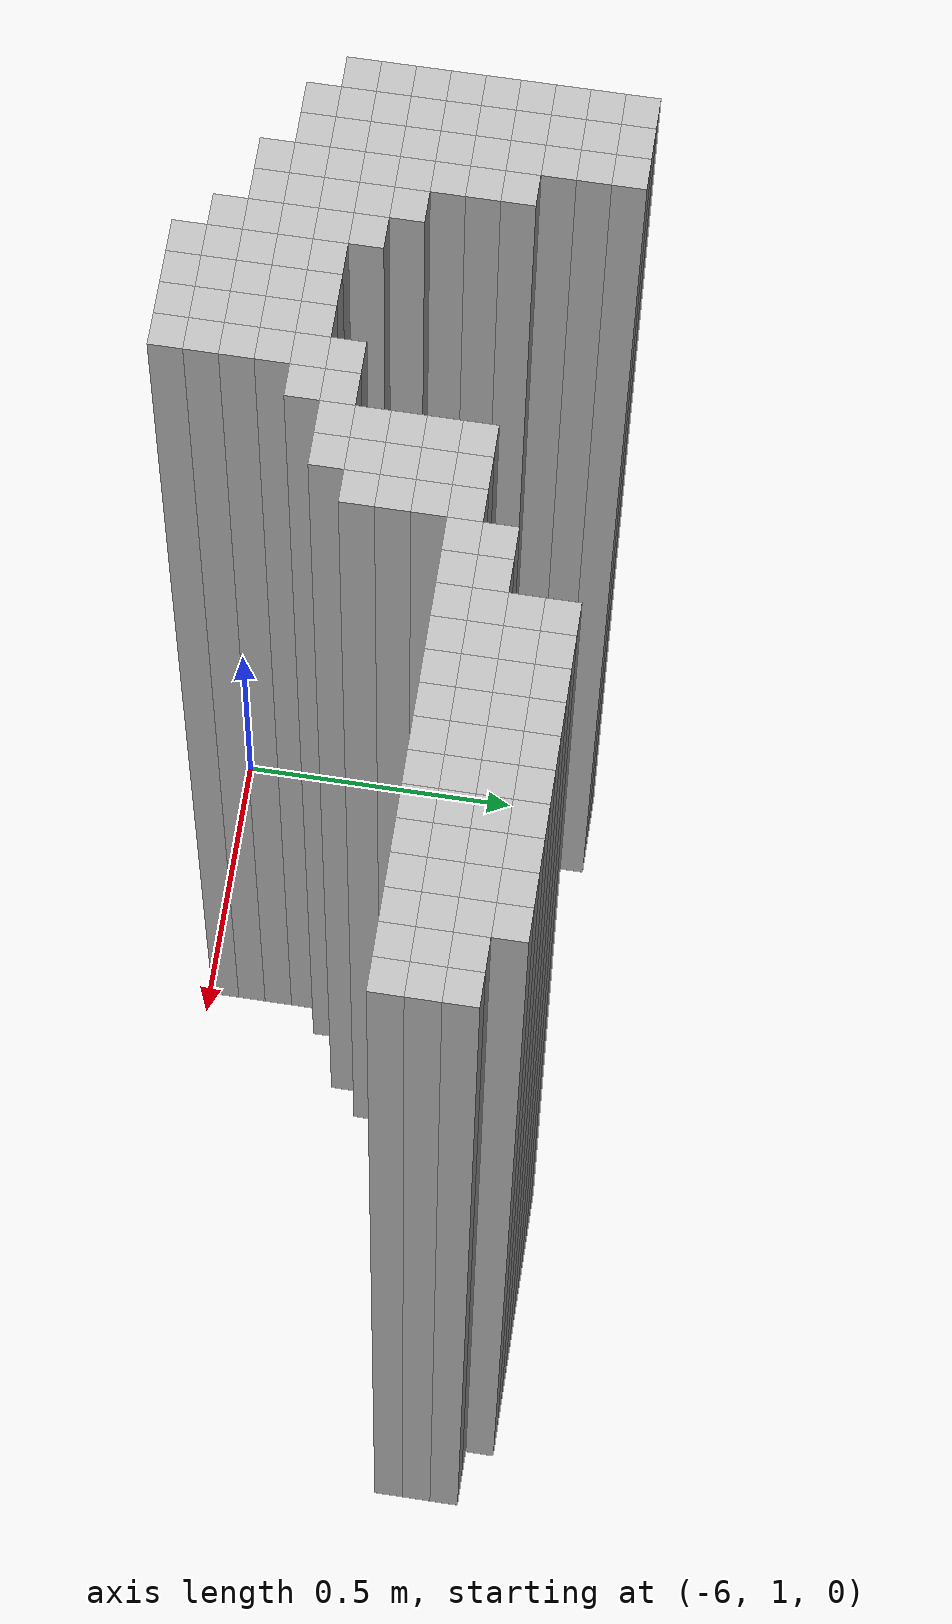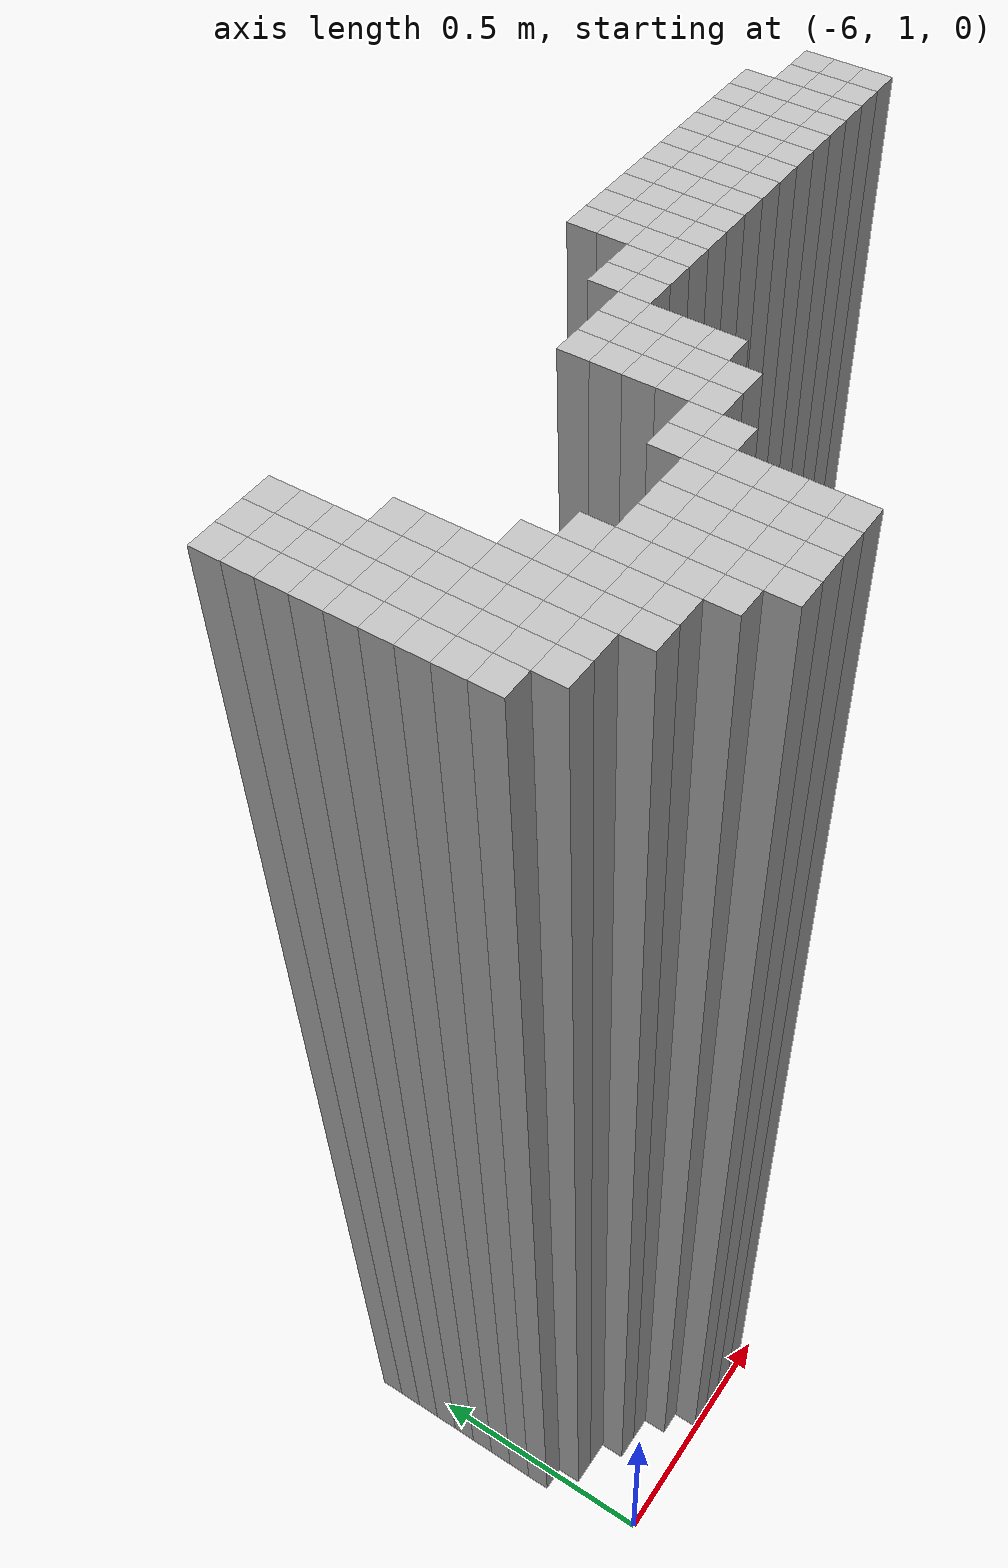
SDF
<sdf version="1.9">
 <world name="map_world">
  <model name="wall_103_121">
   <static>true</static>
   <pose>-6.011 1.630 1.250 0 0 0</pose>
   <link name="link">
    <collision name="collision"><geometry><box><size>0.050 0.050 2.500</size></box></geometry></collision>
    <visual name="visual"><geometry><box><size>0.050 0.050 2.500</size></box></geometry></visual>
   </link>
  </model>
  <model name="wall_104_121">
   <static>true</static>
   <pose>-5.961 1.630 1.250 0 0 0</pose>
   <link name="link">
    <collision name="collision"><geometry><box><size>0.050 0.050 2.500</size></box></geometry></collision>
    <visual name="visual"><geometry><box><size>0.050 0.050 2.500</size></box></geometry></visual>
   </link>
  </model>
  <model name="wall_105_121">
   <static>true</static>
   <pose>-5.911 1.630 1.250 0 0 0</pose>
   <link name="link">
    <collision name="collision"><geometry><box><size>0.050 0.050 2.500</size></box></geometry></collision>
    <visual name="visual"><geometry><box><size>0.050 0.050 2.500</size></box></geometry></visual>
   </link>
  </model>
  <model name="wall_119_121">
   <static>true</static>
   <pose>-5.211 1.630 1.250 0 0 0</pose>
   <link name="link">
    <collision name="collision"><geometry><box><size>0.050 0.050 2.500</size></box></geometry></collision>
    <visual name="visual"><geometry><box><size>0.050 0.050 2.500</size></box></geometry></visual>
   </link>
  </model>
  <model name="wall_120_121">
   <static>true</static>
   <pose>-5.161 1.630 1.250 0 0 0</pose>
   <link name="link">
    <collision name="collision"><geometry><box><size>0.050 0.050 2.500</size></box></geometry></collision>
    <visual name="visual"><geometry><box><size>0.050 0.050 2.500</size></box></geometry></visual>
   </link>
  </model>
  <model name="wall_121_121">
   <static>true</static>
   <pose>-5.111 1.630 1.250 0 0 0</pose>
   <link name="link">
    <collision name="collision"><geometry><box><size>0.050 0.050 2.500</size></box></geometry></collision>
    <visual name="visual"><geometry><box><size>0.050 0.050 2.500</size></box></geometry></visual>
   </link>
  </model>
  <model name="wall_122_121">
   <static>true</static>
   <pose>-5.061 1.630 1.250 0 0 0</pose>
   <link name="link">
    <collision name="collision"><geometry><box><size>0.050 0.050 2.500</size></box></geometry></collision>
    <visual name="visual"><geometry><box><size>0.050 0.050 2.500</size></box></geometry></visual>
   </link>
  </model>
  <model name="wall_123_121">
   <static>true</static>
   <pose>-5.011 1.630 1.250 0 0 0</pose>
   <link name="link">
    <collision name="collision"><geometry><box><size>0.050 0.050 2.500</size></box></geometry></collision>
    <visual name="visual"><geometry><box><size>0.050 0.050 2.500</size></box></geometry></visual>
   </link>
  </model>
  <model name="wall_124_121">
   <static>true</static>
   <pose>-4.961 1.630 1.250 0 0 0</pose>
   <link name="link">
    <collision name="collision"><geometry><box><size>0.050 0.050 2.500</size></box></geometry></collision>
    <visual name="visual"><geometry><box><size>0.050 0.050 2.500</size></box></geometry></visual>
   </link>
  </model>
  <model name="wall_125_121">
   <static>true</static>
   <pose>-4.911 1.630 1.250 0 0 0</pose>
   <link name="link">
    <collision name="collision"><geometry><box><size>0.050 0.050 2.500</size></box></geometry></collision>
    <visual name="visual"><geometry><box><size>0.050 0.050 2.500</size></box></geometry></visual>
   </link>
  </model>
  <model name="wall_126_121">
   <static>true</static>
   <pose>-4.861 1.630 1.250 0 0 0</pose>
   <link name="link">
    <collision name="collision"><geometry><box><size>0.050 0.050 2.500</size></box></geometry></collision>
    <visual name="visual"><geometry><box><size>0.050 0.050 2.500</size></box></geometry></visual>
   </link>
  </model>
  <model name="wall_127_121">
   <static>true</static>
   <pose>-4.811 1.630 1.250 0 0 0</pose>
   <link name="link">
    <collision name="collision"><geometry><box><size>0.050 0.050 2.500</size></box></geometry></collision>
    <visual name="visual"><geometry><box><size>0.050 0.050 2.500</size></box></geometry></visual>
   </link>
  </model>
  <model name="wall_128_121">
   <static>true</static>
   <pose>-4.761 1.630 1.250 0 0 0</pose>
   <link name="link">
    <collision name="collision"><geometry><box><size>0.050 0.050 2.500</size></box></geometry></collision>
    <visual name="visual"><geometry><box><size>0.050 0.050 2.500</size></box></geometry></visual>
   </link>
  </model>
  <model name="wall_103_122">
   <static>true</static>
   <pose>-6.011 1.580 1.250 0 0 0</pose>
   <link name="link">
    <collision name="collision"><geometry><box><size>0.050 0.050 2.500</size></box></geometry></collision>
    <visual name="visual"><geometry><box><size>0.050 0.050 2.500</size></box></geometry></visual>
   </link>
  </model>
  <model name="wall_104_122">
   <static>true</static>
   <pose>-5.961 1.580 1.250 0 0 0</pose>
   <link name="link">
    <collision name="collision"><geometry><box><size>0.050 0.050 2.500</size></box></geometry></collision>
    <visual name="visual"><geometry><box><size>0.050 0.050 2.500</size></box></geometry></visual>
   </link>
  </model>
  <model name="wall_105_122">
   <static>true</static>
   <pose>-5.911 1.580 1.250 0 0 0</pose>
   <link name="link">
    <collision name="collision"><geometry><box><size>0.050 0.050 2.500</size></box></geometry></collision>
    <visual name="visual"><geometry><box><size>0.050 0.050 2.500</size></box></geometry></visual>
   </link>
  </model>
  <model name="wall_119_122">
   <static>true</static>
   <pose>-5.211 1.580 1.250 0 0 0</pose>
   <link name="link">
    <collision name="collision"><geometry><box><size>0.050 0.050 2.500</size></box></geometry></collision>
    <visual name="visual"><geometry><box><size>0.050 0.050 2.500</size></box></geometry></visual>
   </link>
  </model>
  <model name="wall_120_122">
   <static>true</static>
   <pose>-5.161 1.580 1.250 0 0 0</pose>
   <link name="link">
    <collision name="collision"><geometry><box><size>0.050 0.050 2.500</size></box></geometry></collision>
    <visual name="visual"><geometry><box><size>0.050 0.050 2.500</size></box></geometry></visual>
   </link>
  </model>
  <model name="wall_121_122">
   <static>true</static>
   <pose>-5.111 1.580 1.250 0 0 0</pose>
   <link name="link">
    <collision name="collision"><geometry><box><size>0.050 0.050 2.500</size></box></geometry></collision>
    <visual name="visual"><geometry><box><size>0.050 0.050 2.500</size></box></geometry></visual>
   </link>
  </model>
  <model name="wall_122_122">
   <static>true</static>
   <pose>-5.061 1.580 1.250 0 0 0</pose>
   <link name="link">
    <collision name="collision"><geometry><box><size>0.050 0.050 2.500</size></box></geometry></collision>
    <visual name="visual"><geometry><box><size>0.050 0.050 2.500</size></box></geometry></visual>
   </link>
  </model>
  <model name="wall_123_122">
   <static>true</static>
   <pose>-5.011 1.580 1.250 0 0 0</pose>
   <link name="link">
    <collision name="collision"><geometry><box><size>0.050 0.050 2.500</size></box></geometry></collision>
    <visual name="visual"><geometry><box><size>0.050 0.050 2.500</size></box></geometry></visual>
   </link>
  </model>
  <model name="wall_124_122">
   <static>true</static>
   <pose>-4.961 1.580 1.250 0 0 0</pose>
   <link name="link">
    <collision name="collision"><geometry><box><size>0.050 0.050 2.500</size></box></geometry></collision>
    <visual name="visual"><geometry><box><size>0.050 0.050 2.500</size></box></geometry></visual>
   </link>
  </model>
  <model name="wall_125_122">
   <static>true</static>
   <pose>-4.911 1.580 1.250 0 0 0</pose>
   <link name="link">
    <collision name="collision"><geometry><box><size>0.050 0.050 2.500</size></box></geometry></collision>
    <visual name="visual"><geometry><box><size>0.050 0.050 2.500</size></box></geometry></visual>
   </link>
  </model>
  <model name="wall_126_122">
   <static>true</static>
   <pose>-4.861 1.580 1.250 0 0 0</pose>
   <link name="link">
    <collision name="collision"><geometry><box><size>0.050 0.050 2.500</size></box></geometry></collision>
    <visual name="visual"><geometry><box><size>0.050 0.050 2.500</size></box></geometry></visual>
   </link>
  </model>
  <model name="wall_127_122">
   <static>true</static>
   <pose>-4.811 1.580 1.250 0 0 0</pose>
   <link name="link">
    <collision name="collision"><geometry><box><size>0.050 0.050 2.500</size></box></geometry></collision>
    <visual name="visual"><geometry><box><size>0.050 0.050 2.500</size></box></geometry></visual>
   </link>
  </model>
  <model name="wall_128_122">
   <static>true</static>
   <pose>-4.761 1.580 1.250 0 0 0</pose>
   <link name="link">
    <collision name="collision"><geometry><box><size>0.050 0.050 2.500</size></box></geometry></collision>
    <visual name="visual"><geometry><box><size>0.050 0.050 2.500</size></box></geometry></visual>
   </link>
  </model>
  <model name="wall_129_122">
   <static>true</static>
   <pose>-4.711 1.580 1.250 0 0 0</pose>
   <link name="link">
    <collision name="collision"><geometry><box><size>0.050 0.050 2.500</size></box></geometry></collision>
    <visual name="visual"><geometry><box><size>0.050 0.050 2.500</size></box></geometry></visual>
   </link>
  </model>
  <model name="wall_130_122">
   <static>true</static>
   <pose>-4.661 1.580 1.250 0 0 0</pose>
   <link name="link">
    <collision name="collision"><geometry><box><size>0.050 0.050 2.500</size></box></geometry></collision>
    <visual name="visual"><geometry><box><size>0.050 0.050 2.500</size></box></geometry></visual>
   </link>
  </model>
  <model name="wall_103_123">
   <static>true</static>
   <pose>-6.011 1.530 1.250 0 0 0</pose>
   <link name="link">
    <collision name="collision"><geometry><box><size>0.050 0.050 2.500</size></box></geometry></collision>
    <visual name="visual"><geometry><box><size>0.050 0.050 2.500</size></box></geometry></visual>
   </link>
  </model>
  <model name="wall_104_123">
   <static>true</static>
   <pose>-5.961 1.530 1.250 0 0 0</pose>
   <link name="link">
    <collision name="collision"><geometry><box><size>0.050 0.050 2.500</size></box></geometry></collision>
    <visual name="visual"><geometry><box><size>0.050 0.050 2.500</size></box></geometry></visual>
   </link>
  </model>
  <model name="wall_105_123">
   <static>true</static>
   <pose>-5.911 1.530 1.250 0 0 0</pose>
   <link name="link">
    <collision name="collision"><geometry><box><size>0.050 0.050 2.500</size></box></geometry></collision>
    <visual name="visual"><geometry><box><size>0.050 0.050 2.500</size></box></geometry></visual>
   </link>
  </model>
  <model name="wall_117_123">
   <static>true</static>
   <pose>-5.311 1.530 1.250 0 0 0</pose>
   <link name="link">
    <collision name="collision"><geometry><box><size>0.050 0.050 2.500</size></box></geometry></collision>
    <visual name="visual"><geometry><box><size>0.050 0.050 2.500</size></box></geometry></visual>
   </link>
  </model>
  <model name="wall_118_123">
   <static>true</static>
   <pose>-5.261 1.530 1.250 0 0 0</pose>
   <link name="link">
    <collision name="collision"><geometry><box><size>0.050 0.050 2.500</size></box></geometry></collision>
    <visual name="visual"><geometry><box><size>0.050 0.050 2.500</size></box></geometry></visual>
   </link>
  </model>
  <model name="wall_119_123">
   <static>true</static>
   <pose>-5.211 1.530 1.250 0 0 0</pose>
   <link name="link">
    <collision name="collision"><geometry><box><size>0.050 0.050 2.500</size></box></geometry></collision>
    <visual name="visual"><geometry><box><size>0.050 0.050 2.500</size></box></geometry></visual>
   </link>
  </model>
  <model name="wall_120_123">
   <static>true</static>
   <pose>-5.161 1.530 1.250 0 0 0</pose>
   <link name="link">
    <collision name="collision"><geometry><box><size>0.050 0.050 2.500</size></box></geometry></collision>
    <visual name="visual"><geometry><box><size>0.050 0.050 2.500</size></box></geometry></visual>
   </link>
  </model>
  <model name="wall_121_123">
   <static>true</static>
   <pose>-5.111 1.530 1.250 0 0 0</pose>
   <link name="link">
    <collision name="collision"><geometry><box><size>0.050 0.050 2.500</size></box></geometry></collision>
    <visual name="visual"><geometry><box><size>0.050 0.050 2.500</size></box></geometry></visual>
   </link>
  </model>
  <model name="wall_122_123">
   <static>true</static>
   <pose>-5.061 1.530 1.250 0 0 0</pose>
   <link name="link">
    <collision name="collision"><geometry><box><size>0.050 0.050 2.500</size></box></geometry></collision>
    <visual name="visual"><geometry><box><size>0.050 0.050 2.500</size></box></geometry></visual>
   </link>
  </model>
  <model name="wall_123_123">
   <static>true</static>
   <pose>-5.011 1.530 1.250 0 0 0</pose>
   <link name="link">
    <collision name="collision"><geometry><box><size>0.050 0.050 2.500</size></box></geometry></collision>
    <visual name="visual"><geometry><box><size>0.050 0.050 2.500</size></box></geometry></visual>
   </link>
  </model>
  <model name="wall_124_123">
   <static>true</static>
   <pose>-4.961 1.530 1.250 0 0 0</pose>
   <link name="link">
    <collision name="collision"><geometry><box><size>0.050 0.050 2.500</size></box></geometry></collision>
    <visual name="visual"><geometry><box><size>0.050 0.050 2.500</size></box></geometry></visual>
   </link>
  </model>
  <model name="wall_125_123">
   <static>true</static>
   <pose>-4.911 1.530 1.250 0 0 0</pose>
   <link name="link">
    <collision name="collision"><geometry><box><size>0.050 0.050 2.500</size></box></geometry></collision>
    <visual name="visual"><geometry><box><size>0.050 0.050 2.500</size></box></geometry></visual>
   </link>
  </model>
  <model name="wall_126_123">
   <static>true</static>
   <pose>-4.861 1.530 1.250 0 0 0</pose>
   <link name="link">
    <collision name="collision"><geometry><box><size>0.050 0.050 2.500</size></box></geometry></collision>
    <visual name="visual"><geometry><box><size>0.050 0.050 2.500</size></box></geometry></visual>
   </link>
  </model>
  <model name="wall_127_123">
   <static>true</static>
   <pose>-4.811 1.530 1.250 0 0 0</pose>
   <link name="link">
    <collision name="collision"><geometry><box><size>0.050 0.050 2.500</size></box></geometry></collision>
    <visual name="visual"><geometry><box><size>0.050 0.050 2.500</size></box></geometry></visual>
   </link>
  </model>
  <model name="wall_128_123">
   <static>true</static>
   <pose>-4.761 1.530 1.250 0 0 0</pose>
   <link name="link">
    <collision name="collision"><geometry><box><size>0.050 0.050 2.500</size></box></geometry></collision>
    <visual name="visual"><geometry><box><size>0.050 0.050 2.500</size></box></geometry></visual>
   </link>
  </model>
  <model name="wall_129_123">
   <static>true</static>
   <pose>-4.711 1.530 1.250 0 0 0</pose>
   <link name="link">
    <collision name="collision"><geometry><box><size>0.050 0.050 2.500</size></box></geometry></collision>
    <visual name="visual"><geometry><box><size>0.050 0.050 2.500</size></box></geometry></visual>
   </link>
  </model>
  <model name="wall_130_123">
   <static>true</static>
   <pose>-4.661 1.530 1.250 0 0 0</pose>
   <link name="link">
    <collision name="collision"><geometry><box><size>0.050 0.050 2.500</size></box></geometry></collision>
    <visual name="visual"><geometry><box><size>0.050 0.050 2.500</size></box></geometry></visual>
   </link>
  </model>
  <model name="wall_103_124">
   <static>true</static>
   <pose>-6.011 1.480 1.250 0 0 0</pose>
   <link name="link">
    <collision name="collision"><geometry><box><size>0.050 0.050 2.500</size></box></geometry></collision>
    <visual name="visual"><geometry><box><size>0.050 0.050 2.500</size></box></geometry></visual>
   </link>
  </model>
  <model name="wall_104_124">
   <static>true</static>
   <pose>-5.961 1.480 1.250 0 0 0</pose>
   <link name="link">
    <collision name="collision"><geometry><box><size>0.050 0.050 2.500</size></box></geometry></collision>
    <visual name="visual"><geometry><box><size>0.050 0.050 2.500</size></box></geometry></visual>
   </link>
  </model>
  <model name="wall_105_124">
   <static>true</static>
   <pose>-5.911 1.480 1.250 0 0 0</pose>
   <link name="link">
    <collision name="collision"><geometry><box><size>0.050 0.050 2.500</size></box></geometry></collision>
    <visual name="visual"><geometry><box><size>0.050 0.050 2.500</size></box></geometry></visual>
   </link>
  </model>
  <model name="wall_106_124">
   <static>true</static>
   <pose>-5.861 1.480 1.250 0 0 0</pose>
   <link name="link">
    <collision name="collision"><geometry><box><size>0.050 0.050 2.500</size></box></geometry></collision>
    <visual name="visual"><geometry><box><size>0.050 0.050 2.500</size></box></geometry></visual>
   </link>
  </model>
  <model name="wall_114_124">
   <static>true</static>
   <pose>-5.461 1.480 1.250 0 0 0</pose>
   <link name="link">
    <collision name="collision"><geometry><box><size>0.050 0.050 2.500</size></box></geometry></collision>
    <visual name="visual"><geometry><box><size>0.050 0.050 2.500</size></box></geometry></visual>
   </link>
  </model>
  <model name="wall_115_124">
   <static>true</static>
   <pose>-5.411 1.480 1.250 0 0 0</pose>
   <link name="link">
    <collision name="collision"><geometry><box><size>0.050 0.050 2.500</size></box></geometry></collision>
    <visual name="visual"><geometry><box><size>0.050 0.050 2.500</size></box></geometry></visual>
   </link>
  </model>
  <model name="wall_116_124">
   <static>true</static>
   <pose>-5.361 1.480 1.250 0 0 0</pose>
   <link name="link">
    <collision name="collision"><geometry><box><size>0.050 0.050 2.500</size></box></geometry></collision>
    <visual name="visual"><geometry><box><size>0.050 0.050 2.500</size></box></geometry></visual>
   </link>
  </model>
  <model name="wall_117_124">
   <static>true</static>
   <pose>-5.311 1.480 1.250 0 0 0</pose>
   <link name="link">
    <collision name="collision"><geometry><box><size>0.050 0.050 2.500</size></box></geometry></collision>
    <visual name="visual"><geometry><box><size>0.050 0.050 2.500</size></box></geometry></visual>
   </link>
  </model>
  <model name="wall_118_124">
   <static>true</static>
   <pose>-5.261 1.480 1.250 0 0 0</pose>
   <link name="link">
    <collision name="collision"><geometry><box><size>0.050 0.050 2.500</size></box></geometry></collision>
    <visual name="visual"><geometry><box><size>0.050 0.050 2.500</size></box></geometry></visual>
   </link>
  </model>
  <model name="wall_119_124">
   <static>true</static>
   <pose>-5.211 1.480 1.250 0 0 0</pose>
   <link name="link">
    <collision name="collision"><geometry><box><size>0.050 0.050 2.500</size></box></geometry></collision>
    <visual name="visual"><geometry><box><size>0.050 0.050 2.500</size></box></geometry></visual>
   </link>
  </model>
  <model name="wall_120_124">
   <static>true</static>
   <pose>-5.161 1.480 1.250 0 0 0</pose>
   <link name="link">
    <collision name="collision"><geometry><box><size>0.050 0.050 2.500</size></box></geometry></collision>
    <visual name="visual"><geometry><box><size>0.050 0.050 2.500</size></box></geometry></visual>
   </link>
  </model>
  <model name="wall_121_124">
   <static>true</static>
   <pose>-5.111 1.480 1.250 0 0 0</pose>
   <link name="link">
    <collision name="collision"><geometry><box><size>0.050 0.050 2.500</size></box></geometry></collision>
    <visual name="visual"><geometry><box><size>0.050 0.050 2.500</size></box></geometry></visual>
   </link>
  </model>
  <model name="wall_122_124">
   <static>true</static>
   <pose>-5.061 1.480 1.250 0 0 0</pose>
   <link name="link">
    <collision name="collision"><geometry><box><size>0.050 0.050 2.500</size></box></geometry></collision>
    <visual name="visual"><geometry><box><size>0.050 0.050 2.500</size></box></geometry></visual>
   </link>
  </model>
  <model name="wall_123_124">
   <static>true</static>
   <pose>-5.011 1.480 1.250 0 0 0</pose>
   <link name="link">
    <collision name="collision"><geometry><box><size>0.050 0.050 2.500</size></box></geometry></collision>
    <visual name="visual"><geometry><box><size>0.050 0.050 2.500</size></box></geometry></visual>
   </link>
  </model>
  <model name="wall_124_124">
   <static>true</static>
   <pose>-4.961 1.480 1.250 0 0 0</pose>
   <link name="link">
    <collision name="collision"><geometry><box><size>0.050 0.050 2.500</size></box></geometry></collision>
    <visual name="visual"><geometry><box><size>0.050 0.050 2.500</size></box></geometry></visual>
   </link>
  </model>
  <model name="wall_125_124">
   <static>true</static>
   <pose>-4.911 1.480 1.250 0 0 0</pose>
   <link name="link">
    <collision name="collision"><geometry><box><size>0.050 0.050 2.500</size></box></geometry></collision>
    <visual name="visual"><geometry><box><size>0.050 0.050 2.500</size></box></geometry></visual>
   </link>
  </model>
  <model name="wall_126_124">
   <static>true</static>
   <pose>-4.861 1.480 1.250 0 0 0</pose>
   <link name="link">
    <collision name="collision"><geometry><box><size>0.050 0.050 2.500</size></box></geometry></collision>
    <visual name="visual"><geometry><box><size>0.050 0.050 2.500</size></box></geometry></visual>
   </link>
  </model>
  <model name="wall_127_124">
   <static>true</static>
   <pose>-4.811 1.480 1.250 0 0 0</pose>
   <link name="link">
    <collision name="collision"><geometry><box><size>0.050 0.050 2.500</size></box></geometry></collision>
    <visual name="visual"><geometry><box><size>0.050 0.050 2.500</size></box></geometry></visual>
   </link>
  </model>
  <model name="wall_128_124">
   <static>true</static>
   <pose>-4.761 1.480 1.250 0 0 0</pose>
   <link name="link">
    <collision name="collision"><geometry><box><size>0.050 0.050 2.500</size></box></geometry></collision>
    <visual name="visual"><geometry><box><size>0.050 0.050 2.500</size></box></geometry></visual>
   </link>
  </model>
  <model name="wall_129_124">
   <static>true</static>
   <pose>-4.711 1.480 1.250 0 0 0</pose>
   <link name="link">
    <collision name="collision"><geometry><box><size>0.050 0.050 2.500</size></box></geometry></collision>
    <visual name="visual"><geometry><box><size>0.050 0.050 2.500</size></box></geometry></visual>
   </link>
  </model>
  <model name="wall_130_124">
   <static>true</static>
   <pose>-4.661 1.480 1.250 0 0 0</pose>
   <link name="link">
    <collision name="collision"><geometry><box><size>0.050 0.050 2.500</size></box></geometry></collision>
    <visual name="visual"><geometry><box><size>0.050 0.050 2.500</size></box></geometry></visual>
   </link>
  </model>
  <model name="wall_103_125">
   <static>true</static>
   <pose>-6.011 1.430 1.250 0 0 0</pose>
   <link name="link">
    <collision name="collision"><geometry><box><size>0.050 0.050 2.500</size></box></geometry></collision>
    <visual name="visual"><geometry><box><size>0.050 0.050 2.500</size></box></geometry></visual>
   </link>
  </model>
  <model name="wall_104_125">
   <static>true</static>
   <pose>-5.961 1.430 1.250 0 0 0</pose>
   <link name="link">
    <collision name="collision"><geometry><box><size>0.050 0.050 2.500</size></box></geometry></collision>
    <visual name="visual"><geometry><box><size>0.050 0.050 2.500</size></box></geometry></visual>
   </link>
  </model>
  <model name="wall_105_125">
   <static>true</static>
   <pose>-5.911 1.430 1.250 0 0 0</pose>
   <link name="link">
    <collision name="collision"><geometry><box><size>0.050 0.050 2.500</size></box></geometry></collision>
    <visual name="visual"><geometry><box><size>0.050 0.050 2.500</size></box></geometry></visual>
   </link>
  </model>
  <model name="wall_106_125">
   <static>true</static>
   <pose>-5.861 1.430 1.250 0 0 0</pose>
   <link name="link">
    <collision name="collision"><geometry><box><size>0.050 0.050 2.500</size></box></geometry></collision>
    <visual name="visual"><geometry><box><size>0.050 0.050 2.500</size></box></geometry></visual>
   </link>
  </model>
  <model name="wall_114_125">
   <static>true</static>
   <pose>-5.461 1.430 1.250 0 0 0</pose>
   <link name="link">
    <collision name="collision"><geometry><box><size>0.050 0.050 2.500</size></box></geometry></collision>
    <visual name="visual"><geometry><box><size>0.050 0.050 2.500</size></box></geometry></visual>
   </link>
  </model>
  <model name="wall_115_125">
   <static>true</static>
   <pose>-5.411 1.430 1.250 0 0 0</pose>
   <link name="link">
    <collision name="collision"><geometry><box><size>0.050 0.050 2.500</size></box></geometry></collision>
    <visual name="visual"><geometry><box><size>0.050 0.050 2.500</size></box></geometry></visual>
   </link>
  </model>
  <model name="wall_116_125">
   <static>true</static>
   <pose>-5.361 1.430 1.250 0 0 0</pose>
   <link name="link">
    <collision name="collision"><geometry><box><size>0.050 0.050 2.500</size></box></geometry></collision>
    <visual name="visual"><geometry><box><size>0.050 0.050 2.500</size></box></geometry></visual>
   </link>
  </model>
  <model name="wall_103_126">
   <static>true</static>
   <pose>-6.011 1.380 1.250 0 0 0</pose>
   <link name="link">
    <collision name="collision"><geometry><box><size>0.050 0.050 2.500</size></box></geometry></collision>
    <visual name="visual"><geometry><box><size>0.050 0.050 2.500</size></box></geometry></visual>
   </link>
  </model>
  <model name="wall_104_126">
   <static>true</static>
   <pose>-5.961 1.380 1.250 0 0 0</pose>
   <link name="link">
    <collision name="collision"><geometry><box><size>0.050 0.050 2.500</size></box></geometry></collision>
    <visual name="visual"><geometry><box><size>0.050 0.050 2.500</size></box></geometry></visual>
   </link>
  </model>
  <model name="wall_105_126">
   <static>true</static>
   <pose>-5.911 1.380 1.250 0 0 0</pose>
   <link name="link">
    <collision name="collision"><geometry><box><size>0.050 0.050 2.500</size></box></geometry></collision>
    <visual name="visual"><geometry><box><size>0.050 0.050 2.500</size></box></geometry></visual>
   </link>
  </model>
  <model name="wall_106_126">
   <static>true</static>
   <pose>-5.861 1.380 1.250 0 0 0</pose>
   <link name="link">
    <collision name="collision"><geometry><box><size>0.050 0.050 2.500</size></box></geometry></collision>
    <visual name="visual"><geometry><box><size>0.050 0.050 2.500</size></box></geometry></visual>
   </link>
  </model>
  <model name="wall_114_126">
   <static>true</static>
   <pose>-5.461 1.380 1.250 0 0 0</pose>
   <link name="link">
    <collision name="collision"><geometry><box><size>0.050 0.050 2.500</size></box></geometry></collision>
    <visual name="visual"><geometry><box><size>0.050 0.050 2.500</size></box></geometry></visual>
   </link>
  </model>
  <model name="wall_115_126">
   <static>true</static>
   <pose>-5.411 1.380 1.250 0 0 0</pose>
   <link name="link">
    <collision name="collision"><geometry><box><size>0.050 0.050 2.500</size></box></geometry></collision>
    <visual name="visual"><geometry><box><size>0.050 0.050 2.500</size></box></geometry></visual>
   </link>
  </model>
  <model name="wall_116_126">
   <static>true</static>
   <pose>-5.361 1.380 1.250 0 0 0</pose>
   <link name="link">
    <collision name="collision"><geometry><box><size>0.050 0.050 2.500</size></box></geometry></collision>
    <visual name="visual"><geometry><box><size>0.050 0.050 2.500</size></box></geometry></visual>
   </link>
  </model>
  <model name="wall_103_127">
   <static>true</static>
   <pose>-6.011 1.330 1.250 0 0 0</pose>
   <link name="link">
    <collision name="collision"><geometry><box><size>0.050 0.050 2.500</size></box></geometry></collision>
    <visual name="visual"><geometry><box><size>0.050 0.050 2.500</size></box></geometry></visual>
   </link>
  </model>
  <model name="wall_104_127">
   <static>true</static>
   <pose>-5.961 1.330 1.250 0 0 0</pose>
   <link name="link">
    <collision name="collision"><geometry><box><size>0.050 0.050 2.500</size></box></geometry></collision>
    <visual name="visual"><geometry><box><size>0.050 0.050 2.500</size></box></geometry></visual>
   </link>
  </model>
  <model name="wall_105_127">
   <static>true</static>
   <pose>-5.911 1.330 1.250 0 0 0</pose>
   <link name="link">
    <collision name="collision"><geometry><box><size>0.050 0.050 2.500</size></box></geometry></collision>
    <visual name="visual"><geometry><box><size>0.050 0.050 2.500</size></box></geometry></visual>
   </link>
  </model>
  <model name="wall_106_127">
   <static>true</static>
   <pose>-5.861 1.330 1.250 0 0 0</pose>
   <link name="link">
    <collision name="collision"><geometry><box><size>0.050 0.050 2.500</size></box></geometry></collision>
    <visual name="visual"><geometry><box><size>0.050 0.050 2.500</size></box></geometry></visual>
   </link>
  </model>
  <model name="wall_107_127">
   <static>true</static>
   <pose>-5.811 1.330 1.250 0 0 0</pose>
   <link name="link">
    <collision name="collision"><geometry><box><size>0.050 0.050 2.500</size></box></geometry></collision>
    <visual name="visual"><geometry><box><size>0.050 0.050 2.500</size></box></geometry></visual>
   </link>
  </model>
  <model name="wall_114_127">
   <static>true</static>
   <pose>-5.461 1.330 1.250 0 0 0</pose>
   <link name="link">
    <collision name="collision"><geometry><box><size>0.050 0.050 2.500</size></box></geometry></collision>
    <visual name="visual"><geometry><box><size>0.050 0.050 2.500</size></box></geometry></visual>
   </link>
  </model>
  <model name="wall_115_127">
   <static>true</static>
   <pose>-5.411 1.330 1.250 0 0 0</pose>
   <link name="link">
    <collision name="collision"><geometry><box><size>0.050 0.050 2.500</size></box></geometry></collision>
    <visual name="visual"><geometry><box><size>0.050 0.050 2.500</size></box></geometry></visual>
   </link>
  </model>
  <model name="wall_116_127">
   <static>true</static>
   <pose>-5.361 1.330 1.250 0 0 0</pose>
   <link name="link">
    <collision name="collision"><geometry><box><size>0.050 0.050 2.500</size></box></geometry></collision>
    <visual name="visual"><geometry><box><size>0.050 0.050 2.500</size></box></geometry></visual>
   </link>
  </model>
  <model name="wall_103_128">
   <static>true</static>
   <pose>-6.011 1.280 1.250 0 0 0</pose>
   <link name="link">
    <collision name="collision"><geometry><box><size>0.050 0.050 2.500</size></box></geometry></collision>
    <visual name="visual"><geometry><box><size>0.050 0.050 2.500</size></box></geometry></visual>
   </link>
  </model>
  <model name="wall_104_128">
   <static>true</static>
   <pose>-5.961 1.280 1.250 0 0 0</pose>
   <link name="link">
    <collision name="collision"><geometry><box><size>0.050 0.050 2.500</size></box></geometry></collision>
    <visual name="visual"><geometry><box><size>0.050 0.050 2.500</size></box></geometry></visual>
   </link>
  </model>
  <model name="wall_105_128">
   <static>true</static>
   <pose>-5.911 1.280 1.250 0 0 0</pose>
   <link name="link">
    <collision name="collision"><geometry><box><size>0.050 0.050 2.500</size></box></geometry></collision>
    <visual name="visual"><geometry><box><size>0.050 0.050 2.500</size></box></geometry></visual>
   </link>
  </model>
  <model name="wall_106_128">
   <static>true</static>
   <pose>-5.861 1.280 1.250 0 0 0</pose>
   <link name="link">
    <collision name="collision"><geometry><box><size>0.050 0.050 2.500</size></box></geometry></collision>
    <visual name="visual"><geometry><box><size>0.050 0.050 2.500</size></box></geometry></visual>
   </link>
  </model>
  <model name="wall_107_128">
   <static>true</static>
   <pose>-5.811 1.280 1.250 0 0 0</pose>
   <link name="link">
    <collision name="collision"><geometry><box><size>0.050 0.050 2.500</size></box></geometry></collision>
    <visual name="visual"><geometry><box><size>0.050 0.050 2.500</size></box></geometry></visual>
   </link>
  </model>
  <model name="wall_108_128">
   <static>true</static>
   <pose>-5.761 1.280 1.250 0 0 0</pose>
   <link name="link">
    <collision name="collision"><geometry><box><size>0.050 0.050 2.500</size></box></geometry></collision>
    <visual name="visual"><geometry><box><size>0.050 0.050 2.500</size></box></geometry></visual>
   </link>
  </model>
  <model name="wall_112_128">
   <static>true</static>
   <pose>-5.561 1.280 1.250 0 0 0</pose>
   <link name="link">
    <collision name="collision"><geometry><box><size>0.050 0.050 2.500</size></box></geometry></collision>
    <visual name="visual"><geometry><box><size>0.050 0.050 2.500</size></box></geometry></visual>
   </link>
  </model>
  <model name="wall_113_128">
   <static>true</static>
   <pose>-5.511 1.280 1.250 0 0 0</pose>
   <link name="link">
    <collision name="collision"><geometry><box><size>0.050 0.050 2.500</size></box></geometry></collision>
    <visual name="visual"><geometry><box><size>0.050 0.050 2.500</size></box></geometry></visual>
   </link>
  </model>
  <model name="wall_114_128">
   <static>true</static>
   <pose>-5.461 1.280 1.250 0 0 0</pose>
   <link name="link">
    <collision name="collision"><geometry><box><size>0.050 0.050 2.500</size></box></geometry></collision>
    <visual name="visual"><geometry><box><size>0.050 0.050 2.500</size></box></geometry></visual>
   </link>
  </model>
  <model name="wall_115_128">
   <static>true</static>
   <pose>-5.411 1.280 1.250 0 0 0</pose>
   <link name="link">
    <collision name="collision"><geometry><box><size>0.050 0.050 2.500</size></box></geometry></collision>
    <visual name="visual"><geometry><box><size>0.050 0.050 2.500</size></box></geometry></visual>
   </link>
  </model>
  <model name="wall_103_129">
   <static>true</static>
   <pose>-6.011 1.230 1.250 0 0 0</pose>
   <link name="link">
    <collision name="collision"><geometry><box><size>0.050 0.050 2.500</size></box></geometry></collision>
    <visual name="visual"><geometry><box><size>0.050 0.050 2.500</size></box></geometry></visual>
   </link>
  </model>
  <model name="wall_104_129">
   <static>true</static>
   <pose>-5.961 1.230 1.250 0 0 0</pose>
   <link name="link">
    <collision name="collision"><geometry><box><size>0.050 0.050 2.500</size></box></geometry></collision>
    <visual name="visual"><geometry><box><size>0.050 0.050 2.500</size></box></geometry></visual>
   </link>
  </model>
  <model name="wall_105_129">
   <static>true</static>
   <pose>-5.911 1.230 1.250 0 0 0</pose>
   <link name="link">
    <collision name="collision"><geometry><box><size>0.050 0.050 2.500</size></box></geometry></collision>
    <visual name="visual"><geometry><box><size>0.050 0.050 2.500</size></box></geometry></visual>
   </link>
  </model>
  <model name="wall_106_129">
   <static>true</static>
   <pose>-5.861 1.230 1.250 0 0 0</pose>
   <link name="link">
    <collision name="collision"><geometry><box><size>0.050 0.050 2.500</size></box></geometry></collision>
    <visual name="visual"><geometry><box><size>0.050 0.050 2.500</size></box></geometry></visual>
   </link>
  </model>
  <model name="wall_107_129">
   <static>true</static>
   <pose>-5.811 1.230 1.250 0 0 0</pose>
   <link name="link">
    <collision name="collision"><geometry><box><size>0.050 0.050 2.500</size></box></geometry></collision>
    <visual name="visual"><geometry><box><size>0.050 0.050 2.500</size></box></geometry></visual>
   </link>
  </model>
  <model name="wall_108_129">
   <static>true</static>
   <pose>-5.761 1.230 1.250 0 0 0</pose>
   <link name="link">
    <collision name="collision"><geometry><box><size>0.050 0.050 2.500</size></box></geometry></collision>
    <visual name="visual"><geometry><box><size>0.050 0.050 2.500</size></box></geometry></visual>
   </link>
  </model>
  <model name="wall_109_129">
   <static>true</static>
   <pose>-5.711 1.230 1.250 0 0 0</pose>
   <link name="link">
    <collision name="collision"><geometry><box><size>0.050 0.050 2.500</size></box></geometry></collision>
    <visual name="visual"><geometry><box><size>0.050 0.050 2.500</size></box></geometry></visual>
   </link>
  </model>
  <model name="wall_110_129">
   <static>true</static>
   <pose>-5.661 1.230 1.250 0 0 0</pose>
   <link name="link">
    <collision name="collision"><geometry><box><size>0.050 0.050 2.500</size></box></geometry></collision>
    <visual name="visual"><geometry><box><size>0.050 0.050 2.500</size></box></geometry></visual>
   </link>
  </model>
  <model name="wall_111_129">
   <static>true</static>
   <pose>-5.611 1.230 1.250 0 0 0</pose>
   <link name="link">
    <collision name="collision"><geometry><box><size>0.050 0.050 2.500</size></box></geometry></collision>
    <visual name="visual"><geometry><box><size>0.050 0.050 2.500</size></box></geometry></visual>
   </link>
  </model>
  <model name="wall_112_129">
   <static>true</static>
   <pose>-5.561 1.230 1.250 0 0 0</pose>
   <link name="link">
    <collision name="collision"><geometry><box><size>0.050 0.050 2.500</size></box></geometry></collision>
    <visual name="visual"><geometry><box><size>0.050 0.050 2.500</size></box></geometry></visual>
   </link>
  </model>
  <model name="wall_113_129">
   <static>true</static>
   <pose>-5.511 1.230 1.250 0 0 0</pose>
   <link name="link">
    <collision name="collision"><geometry><box><size>0.050 0.050 2.500</size></box></geometry></collision>
    <visual name="visual"><geometry><box><size>0.050 0.050 2.500</size></box></geometry></visual>
   </link>
  </model>
  <model name="wall_104_130">
   <static>true</static>
   <pose>-5.961 1.180 1.250 0 0 0</pose>
   <link name="link">
    <collision name="collision"><geometry><box><size>0.050 0.050 2.500</size></box></geometry></collision>
    <visual name="visual"><geometry><box><size>0.050 0.050 2.500</size></box></geometry></visual>
   </link>
  </model>
  <model name="wall_105_130">
   <static>true</static>
   <pose>-5.911 1.180 1.250 0 0 0</pose>
   <link name="link">
    <collision name="collision"><geometry><box><size>0.050 0.050 2.500</size></box></geometry></collision>
    <visual name="visual"><geometry><box><size>0.050 0.050 2.500</size></box></geometry></visual>
   </link>
  </model>
  <model name="wall_106_130">
   <static>true</static>
   <pose>-5.861 1.180 1.250 0 0 0</pose>
   <link name="link">
    <collision name="collision"><geometry><box><size>0.050 0.050 2.500</size></box></geometry></collision>
    <visual name="visual"><geometry><box><size>0.050 0.050 2.500</size></box></geometry></visual>
   </link>
  </model>
  <model name="wall_107_130">
   <static>true</static>
   <pose>-5.811 1.180 1.250 0 0 0</pose>
   <link name="link">
    <collision name="collision"><geometry><box><size>0.050 0.050 2.500</size></box></geometry></collision>
    <visual name="visual"><geometry><box><size>0.050 0.050 2.500</size></box></geometry></visual>
   </link>
  </model>
  <model name="wall_108_130">
   <static>true</static>
   <pose>-5.761 1.180 1.250 0 0 0</pose>
   <link name="link">
    <collision name="collision"><geometry><box><size>0.050 0.050 2.500</size></box></geometry></collision>
    <visual name="visual"><geometry><box><size>0.050 0.050 2.500</size></box></geometry></visual>
   </link>
  </model>
  <model name="wall_109_130">
   <static>true</static>
   <pose>-5.711 1.180 1.250 0 0 0</pose>
   <link name="link">
    <collision name="collision"><geometry><box><size>0.050 0.050 2.500</size></box></geometry></collision>
    <visual name="visual"><geometry><box><size>0.050 0.050 2.500</size></box></geometry></visual>
   </link>
  </model>
  <model name="wall_110_130">
   <static>true</static>
   <pose>-5.661 1.180 1.250 0 0 0</pose>
   <link name="link">
    <collision name="collision"><geometry><box><size>0.050 0.050 2.500</size></box></geometry></collision>
    <visual name="visual"><geometry><box><size>0.050 0.050 2.500</size></box></geometry></visual>
   </link>
  </model>
  <model name="wall_111_130">
   <static>true</static>
   <pose>-5.611 1.180 1.250 0 0 0</pose>
   <link name="link">
    <collision name="collision"><geometry><box><size>0.050 0.050 2.500</size></box></geometry></collision>
    <visual name="visual"><geometry><box><size>0.050 0.050 2.500</size></box></geometry></visual>
   </link>
  </model>
  <model name="wall_112_130">
   <static>true</static>
   <pose>-5.561 1.180 1.250 0 0 0</pose>
   <link name="link">
    <collision name="collision"><geometry><box><size>0.050 0.050 2.500</size></box></geometry></collision>
    <visual name="visual"><geometry><box><size>0.050 0.050 2.500</size></box></geometry></visual>
   </link>
  </model>
  <model name="wall_106_131">
   <static>true</static>
   <pose>-5.861 1.130 1.250 0 0 0</pose>
   <link name="link">
    <collision name="collision"><geometry><box><size>0.050 0.050 2.500</size></box></geometry></collision>
    <visual name="visual"><geometry><box><size>0.050 0.050 2.500</size></box></geometry></visual>
   </link>
  </model>
  <model name="wall_107_131">
   <static>true</static>
   <pose>-5.811 1.130 1.250 0 0 0</pose>
   <link name="link">
    <collision name="collision"><geometry><box><size>0.050 0.050 2.500</size></box></geometry></collision>
    <visual name="visual"><geometry><box><size>0.050 0.050 2.500</size></box></geometry></visual>
   </link>
  </model>
  <model name="wall_108_131">
   <static>true</static>
   <pose>-5.761 1.130 1.250 0 0 0</pose>
   <link name="link">
    <collision name="collision"><geometry><box><size>0.050 0.050 2.500</size></box></geometry></collision>
    <visual name="visual"><geometry><box><size>0.050 0.050 2.500</size></box></geometry></visual>
   </link>
  </model>
  <model name="wall_109_131">
   <static>true</static>
   <pose>-5.711 1.130 1.250 0 0 0</pose>
   <link name="link">
    <collision name="collision"><geometry><box><size>0.050 0.050 2.500</size></box></geometry></collision>
    <visual name="visual"><geometry><box><size>0.050 0.050 2.500</size></box></geometry></visual>
   </link>
  </model>
  <model name="wall_110_131">
   <static>true</static>
   <pose>-5.661 1.130 1.250 0 0 0</pose>
   <link name="link">
    <collision name="collision"><geometry><box><size>0.050 0.050 2.500</size></box></geometry></collision>
    <visual name="visual"><geometry><box><size>0.050 0.050 2.500</size></box></geometry></visual>
   </link>
  </model>
  <model name="wall_111_131">
   <static>true</static>
   <pose>-5.611 1.130 1.250 0 0 0</pose>
   <link name="link">
    <collision name="collision"><geometry><box><size>0.050 0.050 2.500</size></box></geometry></collision>
    <visual name="visual"><geometry><box><size>0.050 0.050 2.500</size></box></geometry></visual>
   </link>
  </model>
  <model name="wall_112_131">
   <static>true</static>
   <pose>-5.561 1.130 1.250 0 0 0</pose>
   <link name="link">
    <collision name="collision"><geometry><box><size>0.050 0.050 2.500</size></box></geometry></collision>
    <visual name="visual"><geometry><box><size>0.050 0.050 2.500</size></box></geometry></visual>
   </link>
  </model>
  <model name="wall_108_132">
   <static>true</static>
   <pose>-5.761 1.080 1.250 0 0 0</pose>
   <link name="link">
    <collision name="collision"><geometry><box><size>0.050 0.050 2.500</size></box></geometry></collision>
    <visual name="visual"><geometry><box><size>0.050 0.050 2.500</size></box></geometry></visual>
   </link>
  </model>
  <model name="wall_109_132">
   <static>true</static>
   <pose>-5.711 1.080 1.250 0 0 0</pose>
   <link name="link">
    <collision name="collision"><geometry><box><size>0.050 0.050 2.500</size></box></geometry></collision>
    <visual name="visual"><geometry><box><size>0.050 0.050 2.500</size></box></geometry></visual>
   </link>
  </model>
  <model name="wall_110_132">
   <static>true</static>
   <pose>-5.661 1.080 1.250 0 0 0</pose>
   <link name="link">
    <collision name="collision"><geometry><box><size>0.050 0.050 2.500</size></box></geometry></collision>
    <visual name="visual"><geometry><box><size>0.050 0.050 2.500</size></box></geometry></visual>
   </link>
  </model>
  <model name="wall_111_132">
   <static>true</static>
   <pose>-5.611 1.080 1.250 0 0 0</pose>
   <link name="link">
    <collision name="collision"><geometry><box><size>0.050 0.050 2.500</size></box></geometry></collision>
    <visual name="visual"><geometry><box><size>0.050 0.050 2.500</size></box></geometry></visual>
   </link>
  </model>
  <model name="wall_112_132">
   <static>true</static>
   <pose>-5.561 1.080 1.250 0 0 0</pose>
   <link name="link">
    <collision name="collision"><geometry><box><size>0.050 0.050 2.500</size></box></geometry></collision>
    <visual name="visual"><geometry><box><size>0.050 0.050 2.500</size></box></geometry></visual>
   </link>
  </model>
  <model name="wall_109_133">
   <static>true</static>
   <pose>-5.711 1.030 1.250 0 0 0</pose>
   <link name="link">
    <collision name="collision"><geometry><box><size>0.050 0.050 2.500</size></box></geometry></collision>
    <visual name="visual"><geometry><box><size>0.050 0.050 2.500</size></box></geometry></visual>
   </link>
  </model>
  <model name="wall_110_133">
   <static>true</static>
   <pose>-5.661 1.030 1.250 0 0 0</pose>
   <link name="link">
    <collision name="collision"><geometry><box><size>0.050 0.050 2.500</size></box></geometry></collision>
    <visual name="visual"><geometry><box><size>0.050 0.050 2.500</size></box></geometry></visual>
   </link>
  </model>
  <model name="wall_111_133">
   <static>true</static>
   <pose>-5.611 1.030 1.250 0 0 0</pose>
   <link name="link">
    <collision name="collision"><geometry><box><size>0.050 0.050 2.500</size></box></geometry></collision>
    <visual name="visual"><geometry><box><size>0.050 0.050 2.500</size></box></geometry></visual>
   </link>
  </model>
  <model name="wall_112_133">
   <static>true</static>
   <pose>-5.561 1.030 1.250 0 0 0</pose>
   <link name="link">
    <collision name="collision"><geometry><box><size>0.050 0.050 2.500</size></box></geometry></collision>
    <visual name="visual"><geometry><box><size>0.050 0.050 2.500</size></box></geometry></visual>
   </link>
  </model>
 </world>
</sdf>
